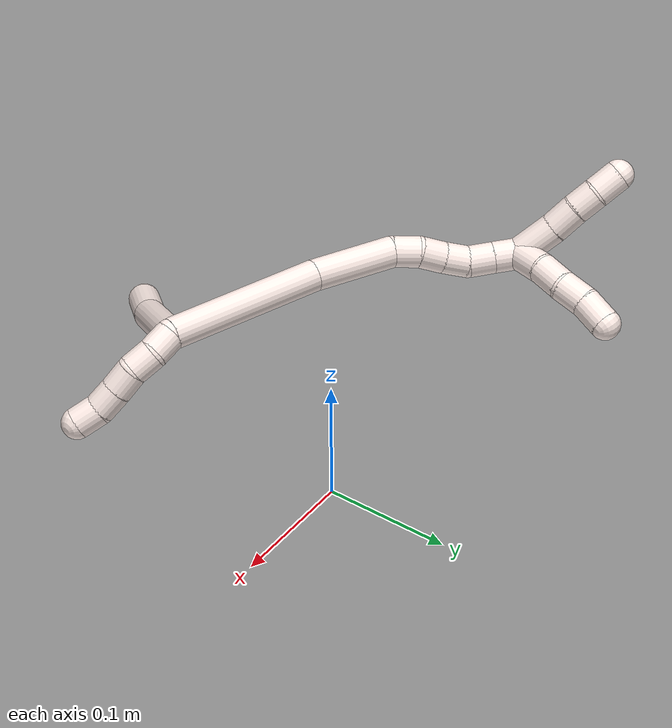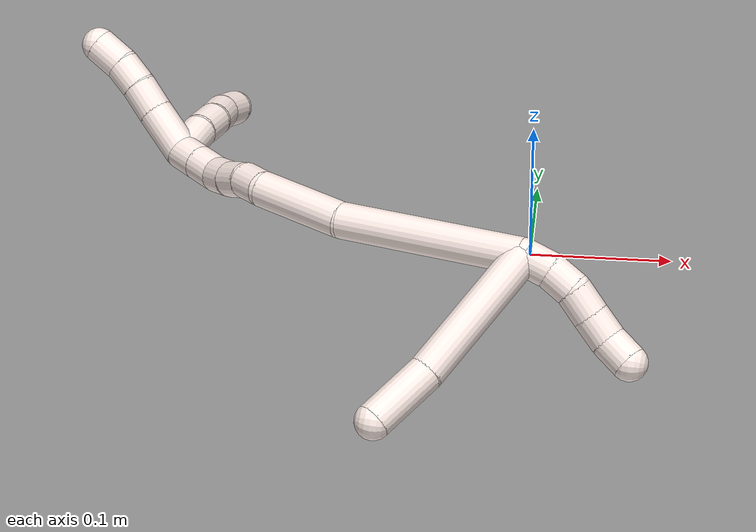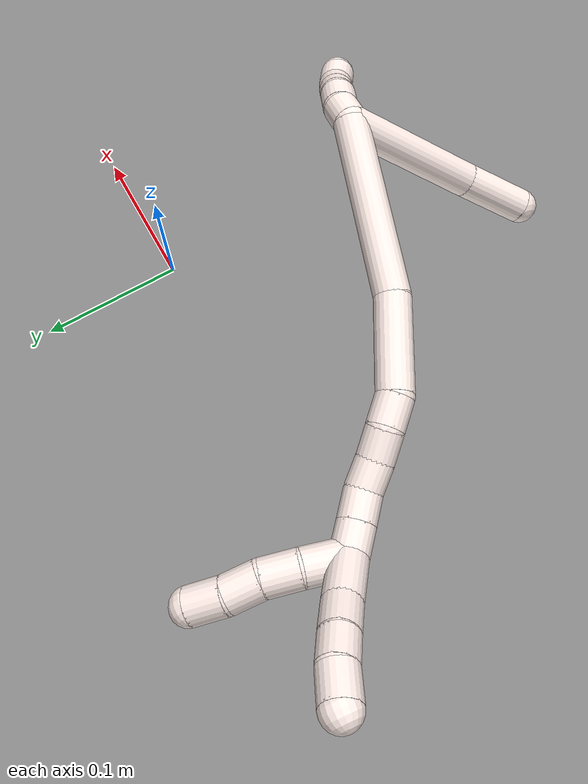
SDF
<sdf version="1.7">
 <world name="default">
  <model name="photoneo_s_sensor">
   <static>1</static>
   <pose>0 0 2 1.57079 1.57079 3.14159</pose>
   <link name="link">
    <inertial><mass>0.1</mass></inertial>
    <sensor name="sensor" type="depth">
     <update_rate>30</update_rate>
     <camera>
      <horizontal_fov>1.22</horizontal_fov>
      <image><width>1920</width><height>1200</height><format>B8G8R8</format></image>
      <clip><near>0.1</near><far>4</far></clip>
      <depth_camera><output>points</output></depth_camera>
     </camera>
     <plugin name="camera_plugin" filename="libgazebo_ros_depth_camera.so">
      <baseline>0.2</baseline>
      <alwaysOn>1</alwaysOn>
      <updateRate>0.0</updateRate>
      <cameraName>camera_ir</cameraName>
      <imageTopicName>/camera/color/image_raw</imageTopicName>
      <cameraInfoTopicName>/camera/color/camera_info</cameraInfoTopicName>
      <depthImageTopicName>/camera/depth/image_raw</depthImageTopicName>
      <depthImageCameraInfoTopicName>/camera/depth/camera_info</depthImageCameraInfoTopicName>
      <pointCloudTopicName>/camera/depth/points</pointCloudTopicName>
      <frameName>fr_optical</frameName>
      <pointCloudCutoff>0.1</pointCloudCutoff>
      <pointCloudCutoffMax>2.0</pointCloudCutoffMax>
      <distortionK1>0</distortionK1>
      <distortionK2>0</distortionK2>
      <distortionK3>0</distortionK3>
      <distortionT1>0</distortionT1>
      <distortionT2>0</distortionT2>
      <CxPrime>0</CxPrime>
      <Cx>0</Cx>
      <Cy>0</Cy>
      <focalLength>0</focalLength>
      <hackBaseline>0</hackBaseline>
     </plugin>
    </sensor>
   </link>
  </model>
  <model name="bin">
   <static>1</static>
   <link name="bottom">
    <collision name="collision-bottom">
     <pose>0 0 -0.01 0 -0 0</pose>
     <geometry><box><size>0.8 0.6 0.02</size></box></geometry>
     <surface>
      <friction><ode><mu>100</mu><mu2>100</mu2></ode></friction>
      <contact><collide_bitmask>65535</collide_bitmask></contact>
     </surface>
    </collision>
   </link>
   <link name="west_wall">
    <collision name="collision-west_wall">
     <pose>-0.41 0 0.1 0 -0 0</pose>
     <geometry><box><size>0.02 0.6 0.2</size></box></geometry>
     <surface>
      <friction><ode><mu>100</mu><mu2>100</mu2></ode></friction>
      <contact><collide_bitmask>65535</collide_bitmask></contact>
     </surface>
    </collision>
   </link>
   <link name="east_wall">
    <collision name="collision-east_wall">
     <pose>0.41 0 0.1 0 -0 0</pose>
     <geometry><box><size>0.02 0.6 0.2</size></box></geometry>
     <surface>
      <friction><ode><mu>100</mu><mu2>100</mu2></ode></friction>
      <contact><collide_bitmask>65535</collide_bitmask></contact>
     </surface>
    </collision>
   </link>
   <link name="south_wall">
    <collision name="collision-south_wall">
     <pose>0 -0.31 0.1 0 -0 0</pose>
     <geometry><box><size>0.8 0.02 0.2</size></box></geometry>
     <surface>
      <friction><ode><mu>100</mu><mu2>100</mu2></ode></friction>
      <contact><collide_bitmask>65535</collide_bitmask></contact>
     </surface>
    </collision>
   </link>
   <link name="north_wall">
    <collision name="collision-north_wall">
     <pose>0 0.31 0.1 0 -0 0</pose>
     <geometry><box><size>0.8 0.02 0.2</size></box></geometry>
     <surface>
      <friction><ode><mu>100</mu><mu2>100</mu2></ode></friction>
      <contact><collide_bitmask>65535</collide_bitmask></contact>
     </surface>
    </collision>
   </link>
  </model>
  <model name="11">
   <static>0</static>
   <link name="11">
    <collision name="collision-cylinder-e_1_2_8">
     <pose>0.036405 -0.027673 0.022724 0.883297 0.793666 0.391198</pose>
     <geometry><cylinder><radius>0.0125</radius><length>0.102127</length></cylinder></geometry>
     <surface>
      <friction><ode><mu>1.16</mu><mu2>1.16</mu2><slip1>0</slip1><slip2>0</slip2></ode></friction>
      <contact><ode><kp>1e+06</kp><kd>1</kd><max_vel>0</max_vel><min_depth>0.001</min_depth></ode></contact>
     </surface>
    </collision>
    <visual name="visual-cylinder-e_1_2_8">
     <pose>0.036405 -0.027673 0.022724 0.883297 0.793666 0.391198</pose>
     <geometry><cylinder><radius>0.0125</radius><length>0.102127</length></cylinder></geometry>
     <material><ambient>1 0.933333 0.909804 1</ambient></material>
    </visual>
    <collision name="collision-cylinder-e_2_8_6">
     <pose>0.08998 -0.065997 0.058282 0.692651 0.799952 0.302791</pose>
     <geometry><cylinder><radius>0.0125</radius><length>0.047873</length></cylinder></geometry>
     <surface>
      <friction><ode><mu>1.16</mu><mu2>1.16</mu2><slip1>0</slip1><slip2>0</slip2></ode></friction>
      <contact><ode><kp>1e+06</kp><kd>1</kd><max_vel>0</max_vel><min_depth>0.001</min_depth></ode></contact>
     </surface>
    </collision>
    <visual name="visual-cylinder-e_2_8_6">
     <pose>0.08998 -0.065997 0.058282 0.692651 0.799952 0.302791</pose>
     <geometry><cylinder><radius>0.0125</radius><length>0.047873</length></cylinder></geometry>
     <material><ambient>1 0.933333 0.909804 1</ambient></material>
    </visual>
    <collision name="collision-cylinder-e_1_2_9">
     <pose>0.000546 -0.003148 -0.009476 2.82083 0.054607 0.334487</pose>
     <geometry><cylinder><radius>0.0125</radius><length>0.02</length></cylinder></geometry>
     <surface>
      <friction><ode><mu>1.16</mu><mu2>1.16</mu2><slip1>0</slip1><slip2>0</slip2></ode></friction>
      <contact><ode><kp>1e+06</kp><kd>1</kd><max_vel>0</max_vel><min_depth>0.001</min_depth></ode></contact>
     </surface>
    </collision>
    <visual name="visual-cylinder-e_1_2_9">
     <pose>0.000546 -0.003148 -0.009476 2.82083 0.054607 0.334487</pose>
     <geometry><cylinder><radius>0.0125</radius><length>0.02</length></cylinder></geometry>
     <material><ambient>1 0.933333 0.909804 1</ambient></material>
    </visual>
    <collision name="collision-cylinder-e_2_9_10">
     <pose>0.003999 -0.010514 -0.02754 2.68509 0.295049 1.13821</pose>
     <geometry><cylinder><radius>0.0125</radius><length>0.02</length></cylinder></geometry>
     <surface>
      <friction><ode><mu>1.16</mu><mu2>1.16</mu2><slip1>0</slip1><slip2>0</slip2></ode></friction>
      <contact><ode><kp>1e+06</kp><kd>1</kd><max_vel>0</max_vel><min_depth>0.001</min_depth></ode></contact>
     </surface>
    </collision>
    <visual name="visual-cylinder-e_2_9_10">
     <pose>0.003999 -0.010514 -0.02754 2.68509 0.295049 1.13821</pose>
     <geometry><cylinder><radius>0.0125</radius><length>0.02</length></cylinder></geometry>
     <material><ambient>1 0.933333 0.909804 1</ambient></material>
    </visual>
    <collision name="collision-cylinder-e_3_10_11">
     <pose>0.009545 -0.021495 -0.043005 2.36453 0.266952 0.633937</pose>
     <geometry><cylinder><radius>0.0125</radius><length>0.02</length></cylinder></geometry>
     <surface>
      <friction><ode><mu>1.16</mu><mu2>1.16</mu2><slip1>0</slip1><slip2>0</slip2></ode></friction>
      <contact><ode><kp>1e+06</kp><kd>1</kd><max_vel>0</max_vel><min_depth>0.001</min_depth></ode></contact>
     </surface>
    </collision>
    <visual name="visual-cylinder-e_3_10_11">
     <pose>0.009545 -0.021495 -0.043005 2.36453 0.266952 0.633937</pose>
     <geometry><cylinder><radius>0.0125</radius><length>0.02</length></cylinder></geometry>
     <material><ambient>1 0.933333 0.909804 1</ambient></material>
    </visual>
    <collision name="collision-cylinder-e_4_11_12">
     <pose>0.015149 -0.034716 -0.056919 2.39913 0.301159 0.743303</pose>
     <geometry><cylinder><radius>0.0125</radius><length>0.02</length></cylinder></geometry>
     <surface>
      <friction><ode><mu>1.16</mu><mu2>1.16</mu2><slip1>0</slip1><slip2>0</slip2></ode></friction>
      <contact><ode><kp>1e+06</kp><kd>1</kd><max_vel>0</max_vel><min_depth>0.001</min_depth></ode></contact>
     </surface>
    </collision>
    <visual name="visual-cylinder-e_4_11_12">
     <pose>0.015149 -0.034716 -0.056919 2.39913 0.301159 0.743303</pose>
     <geometry><cylinder><radius>0.0125</radius><length>0.02</length></cylinder></geometry>
     <material><ambient>1 0.933333 0.909804 1</ambient></material>
    </visual>
    <collision name="collision-cylinder-e_5_12_5">
     <pose>0.022536 -0.045356 -0.07189 2.65639 0.457836 1.51057</pose>
     <geometry><cylinder><radius>0.0125</radius><length>0.02</length></cylinder></geometry>
     <surface>
      <friction><ode><mu>1.16</mu><mu2>1.16</mu2><slip1>0</slip1><slip2>0</slip2></ode></friction>
      <contact><ode><kp>1e+06</kp><kd>1</kd><max_vel>0</max_vel><min_depth>0.001</min_depth></ode></contact>
     </surface>
    </collision>
    <visual name="visual-cylinder-e_5_12_5">
     <pose>0.022536 -0.045356 -0.07189 2.65639 0.457836 1.51057</pose>
     <geometry><cylinder><radius>0.0125</radius><length>0.02</length></cylinder></geometry>
     <material><ambient>1 0.933333 0.909804 1</ambient></material>
    </visual>
    <collision name="collision-cylinder-e_1_2_13">
     <pose>-0.014898 -0.00654 0.063542 0.102565 -0.229132 -0.011812</pose>
     <geometry><cylinder><radius>0.0125</radius><length>0.131183</length></cylinder></geometry>
     <surface>
      <friction><ode><mu>1.16</mu><mu2>1.16</mu2><slip1>0</slip1><slip2>0</slip2></ode></friction>
      <contact><ode><kp>1e+06</kp><kd>1</kd><max_vel>0</max_vel><min_depth>0.001</min_depth></ode></contact>
     </surface>
    </collision>
    <visual name="visual-cylinder-e_1_2_13">
     <pose>-0.014898 -0.00654 0.063542 0.102565 -0.229132 -0.011812</pose>
     <geometry><cylinder><radius>0.0125</radius><length>0.131183</length></cylinder></geometry>
     <material><ambient>1 0.933333 0.909804 1</ambient></material>
    </visual>
    <collision name="collision-cylinder-e_2_13_14">
     <pose>-0.04372 -0.014003 0.157365 0.030448 -0.430823 -0.006663</pose>
     <geometry><cylinder><radius>0.0125</radius><length>0.066686</length></cylinder></geometry>
     <surface>
      <friction><ode><mu>1.16</mu><mu2>1.16</mu2><slip1>0</slip1><slip2>0</slip2></ode></friction>
      <contact><ode><kp>1e+06</kp><kd>1</kd><max_vel>0</max_vel><min_depth>0.001</min_depth></ode></contact>
     </surface>
    </collision>
    <visual name="visual-cylinder-e_2_13_14">
     <pose>-0.04372 -0.014003 0.157365 0.030448 -0.430823 -0.006663</pose>
     <geometry><cylinder><radius>0.0125</radius><length>0.066686</length></cylinder></geometry>
     <material><ambient>1 0.933333 0.909804 1</ambient></material>
    </visual>
    <collision name="collision-cylinder-e_3_14_15">
     <pose>-0.064789 -0.016561 0.195425 0.207313 -0.732148 -0.079718</pose>
     <geometry><cylinder><radius>0.0125</radius><length>0.021373</length></cylinder></geometry>
     <surface>
      <friction><ode><mu>1.16</mu><mu2>1.16</mu2><slip1>0</slip1><slip2>0</slip2></ode></friction>
      <contact><ode><kp>1e+06</kp><kd>1</kd><max_vel>0</max_vel><min_depth>0.001</min_depth></ode></contact>
     </surface>
    </collision>
    <visual name="visual-cylinder-e_3_14_15">
     <pose>-0.064789 -0.016561 0.195425 0.207313 -0.732148 -0.079718</pose>
     <geometry><cylinder><radius>0.0125</radius><length>0.021373</length></cylinder></geometry>
     <material><ambient>1 0.933333 0.909804 1</ambient></material>
    </visual>
    <collision name="collision-cylinder-e_4_15_16">
     <pose>-0.078281 -0.022263 0.209882 0.546828 -0.681968 -0.19837</pose>
     <geometry><cylinder><radius>0.0125</radius><length>0.020144</length></cylinder></geometry>
     <surface>
      <friction><ode><mu>1.16</mu><mu2>1.16</mu2><slip1>0</slip1><slip2>0</slip2></ode></friction>
      <contact><ode><kp>1e+06</kp><kd>1</kd><max_vel>0</max_vel><min_depth>0.001</min_depth></ode></contact>
     </surface>
    </collision>
    <visual name="visual-cylinder-e_4_15_16">
     <pose>-0.078281 -0.022263 0.209882 0.546828 -0.681968 -0.19837</pose>
     <geometry><cylinder><radius>0.0125</radius><length>0.020144</length></cylinder></geometry>
     <material><ambient>1 0.933333 0.909804 1</ambient></material>
    </visual>
    <collision name="collision-cylinder-e_5_16_17">
     <pose>-0.091648 -0.029231 0.223108 0.417266 -0.775301 -0.172461</pose>
     <geometry><cylinder><radius>0.0125</radius><length>0.020056</length></cylinder></geometry>
     <surface>
      <friction><ode><mu>1.16</mu><mu2>1.16</mu2><slip1>0</slip1><slip2>0</slip2></ode></friction>
      <contact><ode><kp>1e+06</kp><kd>1</kd><max_vel>0</max_vel><min_depth>0.001</min_depth></ode></contact>
     </surface>
    </collision>
    <visual name="visual-cylinder-e_5_16_17">
     <pose>-0.091648 -0.029231 0.223108 0.417266 -0.775301 -0.172461</pose>
     <geometry><cylinder><radius>0.0125</radius><length>0.020056</length></cylinder></geometry>
     <material><ambient>1 0.933333 0.909804 1</ambient></material>
    </visual>
    <collision name="collision-cylinder-e_6_17_18">
     <pose>-0.104787 -0.032089 0.237723 -0.005466 -0.649001 0.001839</pose>
     <geometry><cylinder><radius>0.0125</radius><length>0.020251</length></cylinder></geometry>
     <surface>
      <friction><ode><mu>1.16</mu><mu2>1.16</mu2><slip1>0</slip1><slip2>0</slip2></ode></friction>
      <contact><ode><kp>1e+06</kp><kd>1</kd><max_vel>0</max_vel><min_depth>0.001</min_depth></ode></contact>
     </surface>
    </collision>
    <visual name="visual-cylinder-e_6_17_18">
     <pose>-0.104787 -0.032089 0.237723 -0.005466 -0.649001 0.001839</pose>
     <geometry><cylinder><radius>0.0125</radius><length>0.020251</length></cylinder></geometry>
     <material><ambient>1 0.933333 0.909804 1</ambient></material>
    </visual>
    <collision name="collision-cylinder-e_7_18_1">
     <pose>-0.117135 -0.03202 0.253808 -0.00316 -0.660359 0.001083</pose>
     <geometry><cylinder><radius>0.0125</radius><length>0.020307</length></cylinder></geometry>
     <surface>
      <friction><ode><mu>1.16</mu><mu2>1.16</mu2><slip1>0</slip1><slip2>0</slip2></ode></friction>
      <contact><ode><kp>1e+06</kp><kd>1</kd><max_vel>0</max_vel><min_depth>0.001</min_depth></ode></contact>
     </surface>
    </collision>
    <visual name="visual-cylinder-e_7_18_1">
     <pose>-0.117135 -0.03202 0.253808 -0.00316 -0.660359 0.001083</pose>
     <geometry><cylinder><radius>0.0125</radius><length>0.020307</length></cylinder></geometry>
     <material><ambient>1 0.933333 0.909804 1</ambient></material>
    </visual>
    <collision name="collision-cylinder-e_1_1_19">
     <pose>-0.137494 -0.030304 0.259368 -2.53942 -1.36268 2.41014</pose>
     <geometry><cylinder><radius>0.0125</radius><length>0.028885</length></cylinder></geometry>
     <surface>
      <friction><ode><mu>1.16</mu><mu2>1.16</mu2><slip1>0</slip1><slip2>0</slip2></ode></friction>
      <contact><ode><kp>1e+06</kp><kd>1</kd><max_vel>0</max_vel><min_depth>0.001</min_depth></ode></contact>
     </surface>
    </collision>
    <visual name="visual-cylinder-e_1_1_19">
     <pose>-0.137494 -0.030304 0.259368 -2.53942 -1.36268 2.41014</pose>
     <geometry><cylinder><radius>0.0125</radius><length>0.028885</length></cylinder></geometry>
     <material><ambient>1 0.933333 0.909804 1</ambient></material>
    </visual>
    <collision name="collision-cylinder-e_2_19_20">
     <pose>-0.16349 -0.029387 0.254797 2.79071 -1.38349 -2.71992</pose>
     <geometry><cylinder><radius>0.0125</radius><length>0.024153</length></cylinder></geometry>
     <surface>
      <friction><ode><mu>1.16</mu><mu2>1.16</mu2><slip1>0</slip1><slip2>0</slip2></ode></friction>
      <contact><ode><kp>1e+06</kp><kd>1</kd><max_vel>0</max_vel><min_depth>0.001</min_depth></ode></contact>
     </surface>
    </collision>
    <visual name="visual-cylinder-e_2_19_20">
     <pose>-0.16349 -0.029387 0.254797 2.79071 -1.38349 -2.71992</pose>
     <geometry><cylinder><radius>0.0125</radius><length>0.024153</length></cylinder></geometry>
     <material><ambient>1 0.933333 0.909804 1</ambient></material>
    </visual>
    <collision name="collision-cylinder-e_3_20_21">
     <pose>-0.186639 -0.032286 0.252498 1.65875 -1.38388 -1.47101</pose>
     <geometry><cylinder><radius>0.0125</radius><length>0.022968</length></cylinder></geometry>
     <surface>
      <friction><ode><mu>1.16</mu><mu2>1.16</mu2><slip1>0</slip1><slip2>0</slip2></ode></friction>
      <contact><ode><kp>1e+06</kp><kd>1</kd><max_vel>0</max_vel><min_depth>0.001</min_depth></ode></contact>
     </surface>
    </collision>
    <visual name="visual-cylinder-e_3_20_21">
     <pose>-0.186639 -0.032286 0.252498 1.65875 -1.38388 -1.47101</pose>
     <geometry><cylinder><radius>0.0125</radius><length>0.022968</length></cylinder></geometry>
     <material><ambient>1 0.933333 0.909804 1</ambient></material>
    </visual>
    <collision name="collision-cylinder-e_4_21_4">
     <pose>-0.20925 -0.037759 0.250208 2.1318 -1.23501 -1.81891</pose>
     <geometry><cylinder><radius>0.0125</radius><length>0.023995</length></cylinder></geometry>
     <surface>
      <friction><ode><mu>1.16</mu><mu2>1.16</mu2><slip1>0</slip1><slip2>0</slip2></ode></friction>
      <contact><ode><kp>1e+06</kp><kd>1</kd><max_vel>0</max_vel><min_depth>0.001</min_depth></ode></contact>
     </surface>
    </collision>
    <visual name="visual-cylinder-e_4_21_4">
     <pose>-0.20925 -0.037759 0.250208 2.1318 -1.23501 -1.81891</pose>
     <geometry><cylinder><radius>0.0125</radius><length>0.023995</length></cylinder></geometry>
     <material><ambient>1 0.933333 0.909804 1</ambient></material>
    </visual>
    <collision name="collision-cylinder-e_1_1_22">
     <pose>-0.131332 -0.022625 0.274177 -0.649058 -0.474804 0.162447</pose>
     <geometry><cylinder><radius>0.0125</radius><length>0.03486</length></cylinder></geometry>
     <surface>
      <friction><ode><mu>1.16</mu><mu2>1.16</mu2><slip1>0</slip1><slip2>0</slip2></ode></friction>
      <contact><ode><kp>1e+06</kp><kd>1</kd><max_vel>0</max_vel><min_depth>0.001</min_depth></ode></contact>
     </surface>
    </collision>
    <visual name="visual-cylinder-e_1_1_22">
     <pose>-0.131332 -0.022625 0.274177 -0.649058 -0.474804 0.162447</pose>
     <geometry><cylinder><radius>0.0125</radius><length>0.03486</length></cylinder></geometry>
     <material><ambient>1 0.933333 0.909804 1</ambient></material>
    </visual>
    <collision name="collision-cylinder-e_2_22_23">
     <pose>-0.14381 -0.006369 0.294284 -0.725937 -0.410186 0.157681</pose>
     <geometry><cylinder><radius>0.0125</radius><length>0.022622</length></cylinder></geometry>
     <surface>
      <friction><ode><mu>1.16</mu><mu2>1.16</mu2><slip1>0</slip1><slip2>0</slip2></ode></friction>
      <contact><ode><kp>1e+06</kp><kd>1</kd><max_vel>0</max_vel><min_depth>0.001</min_depth></ode></contact>
     </surface>
    </collision>
    <visual name="visual-cylinder-e_2_22_23">
     <pose>-0.14381 -0.006369 0.294284 -0.725937 -0.410186 0.157681</pose>
     <geometry><cylinder><radius>0.0125</radius><length>0.022622</length></cylinder></geometry>
     <material><ambient>1 0.933333 0.909804 1</ambient></material>
    </visual>
    <collision name="collision-cylinder-e_3_23_24">
     <pose>-0.15241 0.005829 0.309597 -0.612812 -0.416726 0.133582</pose>
     <geometry><cylinder><radius>0.0125</radius><length>0.020202</length></cylinder></geometry>
     <surface>
      <friction><ode><mu>1.16</mu><mu2>1.16</mu2><slip1>0</slip1><slip2>0</slip2></ode></friction>
      <contact><ode><kp>1e+06</kp><kd>1</kd><max_vel>0</max_vel><min_depth>0.001</min_depth></ode></contact>
     </surface>
    </collision>
    <visual name="visual-cylinder-e_3_23_24">
     <pose>-0.15241 0.005829 0.309597 -0.612812 -0.416726 0.133582</pose>
     <geometry><cylinder><radius>0.0125</radius><length>0.020202</length></cylinder></geometry>
     <material><ambient>1 0.933333 0.909804 1</ambient></material>
    </visual>
    <collision name="collision-cylinder-e_4_24_3">
     <pose>-0.159974 0.015673 0.326739 -0.441506 -0.316813 0.071666</pose>
     <geometry><cylinder><radius>0.0125</radius><length>0.022316</length></cylinder></geometry>
     <surface>
      <friction><ode><mu>1.16</mu><mu2>1.16</mu2><slip1>0</slip1><slip2>0</slip2></ode></friction>
      <contact><ode><kp>1e+06</kp><kd>1</kd><max_vel>0</max_vel><min_depth>0.001</min_depth></ode></contact>
     </surface>
    </collision>
    <visual name="visual-cylinder-e_4_24_3">
     <pose>-0.159974 0.015673 0.326739 -0.441506 -0.316813 0.071666</pose>
     <geometry><cylinder><radius>0.0125</radius><length>0.022316</length></cylinder></geometry>
     <material><ambient>1 0.933333 0.909804 1</ambient></material>
    </visual>
    <collision name="collision-sphere-3">
     <pose>-0.163451 0.020203 0.336326 0 -0 0</pose>
     <geometry><sphere><radius>0.0125</radius></sphere></geometry>
     <surface>
      <friction><ode><mu>1.16</mu><mu2>1.16</mu2><slip1>0</slip1><slip2>0</slip2></ode></friction>
      <contact><ode><kp>1e+06</kp><kd>1</kd><max_vel>0</max_vel><min_depth>0.001</min_depth></ode></contact>
     </surface>
    </collision>
    <visual name="visual-sphere-3">
     <pose>-0.163451 0.020203 0.336326 0 -0 0</pose>
     <geometry><sphere><radius>0.0125</radius></sphere></geometry>
     <material><ambient>1 0.933333 0.909804 1</ambient></material>
    </visual>
    <collision name="collision-sphere-24">
     <pose>-0.156498 0.011142 0.317153 0 -0 0</pose>
     <geometry><sphere><radius>0.0125</radius></sphere></geometry>
     <surface>
      <friction><ode><mu>1.16</mu><mu2>1.16</mu2><slip1>0</slip1><slip2>0</slip2></ode></friction>
      <contact><ode><kp>1e+06</kp><kd>1</kd><max_vel>0</max_vel><min_depth>0.001</min_depth></ode></contact>
     </surface>
    </collision>
    <visual name="visual-sphere-24">
     <pose>-0.156498 0.011142 0.317153 0 -0 0</pose>
     <geometry><sphere><radius>0.0125</radius></sphere></geometry>
     <material><ambient>1 0.933333 0.909804 1</ambient></material>
    </visual>
    <collision name="collision-sphere-23">
     <pose>-0.148321 0.000517 0.302042 0 -0 0</pose>
     <geometry><sphere><radius>0.0125</radius></sphere></geometry>
     <surface>
      <friction><ode><mu>1.16</mu><mu2>1.16</mu2><slip1>0</slip1><slip2>0</slip2></ode></friction>
      <contact><ode><kp>1e+06</kp><kd>1</kd><max_vel>0</max_vel><min_depth>0.001</min_depth></ode></contact>
     </surface>
    </collision>
    <visual name="visual-sphere-23">
     <pose>-0.148321 0.000517 0.302042 0 -0 0</pose>
     <geometry><sphere><radius>0.0125</radius></sphere></geometry>
     <material><ambient>1 0.933333 0.909804 1</ambient></material>
    </visual>
    <collision name="collision-sphere-22">
     <pose>-0.1393 -0.013255 0.286527 0 -0 0</pose>
     <geometry><sphere><radius>0.0125</radius></sphere></geometry>
     <surface>
      <friction><ode><mu>1.16</mu><mu2>1.16</mu2><slip1>0</slip1><slip2>0</slip2></ode></friction>
      <contact><ode><kp>1e+06</kp><kd>1</kd><max_vel>0</max_vel><min_depth>0.001</min_depth></ode></contact>
     </surface>
    </collision>
    <visual name="visual-sphere-22">
     <pose>-0.1393 -0.013255 0.286527 0 -0 0</pose>
     <geometry><sphere><radius>0.0125</radius></sphere></geometry>
     <material><ambient>1 0.933333 0.909804 1</ambient></material>
    </visual>
    <collision name="collision-sphere-4">
     <pose>-0.220577 -0.041106 0.248104 0 -0 0</pose>
     <geometry><sphere><radius>0.0125</radius></sphere></geometry>
     <surface>
      <friction><ode><mu>1.16</mu><mu2>1.16</mu2><slip1>0</slip1><slip2>0</slip2></ode></friction>
      <contact><ode><kp>1e+06</kp><kd>1</kd><max_vel>0</max_vel><min_depth>0.001</min_depth></ode></contact>
     </surface>
    </collision>
    <visual name="visual-sphere-4">
     <pose>-0.220577 -0.041106 0.248104 0 -0 0</pose>
     <geometry><sphere><radius>0.0125</radius></sphere></geometry>
     <material><ambient>1 0.933333 0.909804 1</ambient></material>
    </visual>
    <collision name="collision-sphere-21">
     <pose>-0.197923 -0.034412 0.252311 0 -0 0</pose>
     <geometry><sphere><radius>0.0125</radius></sphere></geometry>
     <surface>
      <friction><ode><mu>1.16</mu><mu2>1.16</mu2><slip1>0</slip1><slip2>0</slip2></ode></friction>
      <contact><ode><kp>1e+06</kp><kd>1</kd><max_vel>0</max_vel><min_depth>0.001</min_depth></ode></contact>
     </surface>
    </collision>
    <visual name="visual-sphere-21">
     <pose>-0.197923 -0.034412 0.252311 0 -0 0</pose>
     <geometry><sphere><radius>0.0125</radius></sphere></geometry>
     <material><ambient>1 0.933333 0.909804 1</ambient></material>
    </visual>
    <collision name="collision-sphere-20">
     <pose>-0.175355 -0.03016 0.252686 0 -0 0</pose>
     <geometry><sphere><radius>0.0125</radius></sphere></geometry>
     <surface>
      <friction><ode><mu>1.16</mu><mu2>1.16</mu2><slip1>0</slip1><slip2>0</slip2></ode></friction>
      <contact><ode><kp>1e+06</kp><kd>1</kd><max_vel>0</max_vel><min_depth>0.001</min_depth></ode></contact>
     </surface>
    </collision>
    <visual name="visual-sphere-20">
     <pose>-0.175355 -0.03016 0.252686 0 -0 0</pose>
     <geometry><sphere><radius>0.0125</radius></sphere></geometry>
     <material><ambient>1 0.933333 0.909804 1</ambient></material>
    </visual>
    <collision name="collision-sphere-11">
     <pose>0.012183 -0.028259 -0.049882 0 -0 0</pose>
     <geometry><sphere><radius>0.0125</radius></sphere></geometry>
     <surface>
      <friction><ode><mu>1.16</mu><mu2>1.16</mu2><slip1>0</slip1><slip2>0</slip2></ode></friction>
      <contact><ode><kp>1e+06</kp><kd>1</kd><max_vel>0</max_vel><min_depth>0.001</min_depth></ode></contact>
     </surface>
    </collision>
    <visual name="visual-sphere-11">
     <pose>0.012183 -0.028259 -0.049882 0 -0 0</pose>
     <geometry><sphere><radius>0.0125</radius></sphere></geometry>
     <material><ambient>1 0.933333 0.909804 1</ambient></material>
    </visual>
    <collision name="collision-sphere-10">
     <pose>0.006907 -0.014732 -0.036128 0 -0 0</pose>
     <geometry><sphere><radius>0.0125</radius></sphere></geometry>
     <surface>
      <friction><ode><mu>1.16</mu><mu2>1.16</mu2><slip1>0</slip1><slip2>0</slip2></ode></friction>
      <contact><ode><kp>1e+06</kp><kd>1</kd><max_vel>0</max_vel><min_depth>0.001</min_depth></ode></contact>
     </surface>
    </collision>
    <visual name="visual-sphere-10">
     <pose>0.006907 -0.014732 -0.036128 0 -0 0</pose>
     <geometry><sphere><radius>0.0125</radius></sphere></geometry>
     <material><ambient>1 0.933333 0.909804 1</ambient></material>
    </visual>
    <collision name="collision-sphere-6">
     <pose>0.10715 -0.076647 0.071116 0 -0 0</pose>
     <geometry><sphere><radius>0.0125</radius></sphere></geometry>
     <surface>
      <friction><ode><mu>1.16</mu><mu2>1.16</mu2><slip1>0</slip1><slip2>0</slip2></ode></friction>
      <contact><ode><kp>1e+06</kp><kd>1</kd><max_vel>0</max_vel><min_depth>0.001</min_depth></ode></contact>
     </surface>
    </collision>
    <visual name="visual-sphere-6">
     <pose>0.10715 -0.076647 0.071116 0 -0 0</pose>
     <geometry><sphere><radius>0.0125</radius></sphere></geometry>
     <material><ambient>1 0.933333 0.909804 1</ambient></material>
    </visual>
    <collision name="collision-sphere-9">
     <pose>0.001092 -0.006296 -0.018952 0 -0 0</pose>
     <geometry><sphere><radius>0.0125</radius></sphere></geometry>
     <surface>
      <friction><ode><mu>1.16</mu><mu2>1.16</mu2><slip1>0</slip1><slip2>0</slip2></ode></friction>
      <contact><ode><kp>1e+06</kp><kd>1</kd><max_vel>0</max_vel><min_depth>0.001</min_depth></ode></contact>
     </surface>
    </collision>
    <visual name="visual-sphere-9">
     <pose>0.001092 -0.006296 -0.018952 0 -0 0</pose>
     <geometry><sphere><radius>0.0125</radius></sphere></geometry>
     <material><ambient>1 0.933333 0.909804 1</ambient></material>
    </visual>
    <collision name="collision-sphere-2">
     <geometry><sphere><radius>0.0125</radius></sphere></geometry>
     <surface>
      <friction><ode><mu>1.16</mu><mu2>1.16</mu2><slip1>0</slip1><slip2>0</slip2></ode></friction>
      <contact><ode><kp>1e+06</kp><kd>1</kd><max_vel>0</max_vel><min_depth>0.001</min_depth></ode></contact>
     </surface>
    </collision>
    <visual name="visual-sphere-2">
     <geometry><sphere><radius>0.0125</radius></sphere></geometry>
     <material><ambient>1 0.933333 0.909804 1</ambient></material>
    </visual>
    <collision name="collision-sphere-19">
     <pose>-0.151625 -0.028614 0.256909 0 -0 0</pose>
     <geometry><sphere><radius>0.0125</radius></sphere></geometry>
     <surface>
      <friction><ode><mu>1.16</mu><mu2>1.16</mu2><slip1>0</slip1><slip2>0</slip2></ode></friction>
      <contact><ode><kp>1e+06</kp><kd>1</kd><max_vel>0</max_vel><min_depth>0.001</min_depth></ode></contact>
     </surface>
    </collision>
    <visual name="visual-sphere-19">
     <pose>-0.151625 -0.028614 0.256909 0 -0 0</pose>
     <geometry><sphere><radius>0.0125</radius></sphere></geometry>
     <material><ambient>1 0.933333 0.909804 1</ambient></material>
    </visual>
    <collision name="collision-sphere-8">
     <pose>0.07281 -0.055347 0.045448 0 -0 0</pose>
     <geometry><sphere><radius>0.0125</radius></sphere></geometry>
     <surface>
      <friction><ode><mu>1.16</mu><mu2>1.16</mu2><slip1>0</slip1><slip2>0</slip2></ode></friction>
      <contact><ode><kp>1e+06</kp><kd>1</kd><max_vel>0</max_vel><min_depth>0.001</min_depth></ode></contact>
     </surface>
    </collision>
    <visual name="visual-sphere-8">
     <pose>0.07281 -0.055347 0.045448 0 -0 0</pose>
     <geometry><sphere><radius>0.0125</radius></sphere></geometry>
     <material><ambient>1 0.933333 0.909804 1</ambient></material>
    </visual>
    <collision name="collision-sphere-12">
     <pose>0.018116 -0.041172 -0.063955 0 -0 0</pose>
     <geometry><sphere><radius>0.0125</radius></sphere></geometry>
     <surface>
      <friction><ode><mu>1.16</mu><mu2>1.16</mu2><slip1>0</slip1><slip2>0</slip2></ode></friction>
      <contact><ode><kp>1e+06</kp><kd>1</kd><max_vel>0</max_vel><min_depth>0.001</min_depth></ode></contact>
     </surface>
    </collision>
    <visual name="visual-sphere-12">
     <pose>0.018116 -0.041172 -0.063955 0 -0 0</pose>
     <geometry><sphere><radius>0.0125</radius></sphere></geometry>
     <material><ambient>1 0.933333 0.909804 1</ambient></material>
    </visual>
    <collision name="collision-sphere-5">
     <pose>0.026956 -0.049539 -0.079825 0 -0 0</pose>
     <geometry><sphere><radius>0.0125</radius></sphere></geometry>
     <surface>
      <friction><ode><mu>1.16</mu><mu2>1.16</mu2><slip1>0</slip1><slip2>0</slip2></ode></friction>
      <contact><ode><kp>1e+06</kp><kd>1</kd><max_vel>0</max_vel><min_depth>0.001</min_depth></ode></contact>
     </surface>
    </collision>
    <visual name="visual-sphere-5">
     <pose>0.026956 -0.049539 -0.079825 0 -0 0</pose>
     <geometry><sphere><radius>0.0125</radius></sphere></geometry>
     <material><ambient>1 0.933333 0.909804 1</ambient></material>
    </visual>
    <collision name="collision-sphere-13">
     <pose>-0.029796 -0.01308 0.127083 0 -0 0</pose>
     <geometry><sphere><radius>0.0125</radius></sphere></geometry>
     <surface>
      <friction><ode><mu>1.16</mu><mu2>1.16</mu2><slip1>0</slip1><slip2>0</slip2></ode></friction>
      <contact><ode><kp>1e+06</kp><kd>1</kd><max_vel>0</max_vel><min_depth>0.001</min_depth></ode></contact>
     </surface>
    </collision>
    <visual name="visual-sphere-13">
     <pose>-0.029796 -0.01308 0.127083 0 -0 0</pose>
     <geometry><sphere><radius>0.0125</radius></sphere></geometry>
     <material><ambient>1 0.933333 0.909804 1</ambient></material>
    </visual>
    <collision name="collision-sphere-14">
     <pose>-0.057645 -0.014925 0.187647 0 -0 0</pose>
     <geometry><sphere><radius>0.0125</radius></sphere></geometry>
     <surface>
      <friction><ode><mu>1.16</mu><mu2>1.16</mu2><slip1>0</slip1><slip2>0</slip2></ode></friction>
      <contact><ode><kp>1e+06</kp><kd>1</kd><max_vel>0</max_vel><min_depth>0.001</min_depth></ode></contact>
     </surface>
    </collision>
    <visual name="visual-sphere-14">
     <pose>-0.057645 -0.014925 0.187647 0 -0 0</pose>
     <geometry><sphere><radius>0.0125</radius></sphere></geometry>
     <material><ambient>1 0.933333 0.909804 1</ambient></material>
    </visual>
    <collision name="collision-sphere-15">
     <pose>-0.071932 -0.018197 0.203203 0 -0 0</pose>
     <geometry><sphere><radius>0.0125</radius></sphere></geometry>
     <surface>
      <friction><ode><mu>1.16</mu><mu2>1.16</mu2><slip1>0</slip1><slip2>0</slip2></ode></friction>
      <contact><ode><kp>1e+06</kp><kd>1</kd><max_vel>0</max_vel><min_depth>0.001</min_depth></ode></contact>
     </surface>
    </collision>
    <visual name="visual-sphere-15">
     <pose>-0.071932 -0.018197 0.203203 0 -0 0</pose>
     <geometry><sphere><radius>0.0125</radius></sphere></geometry>
     <material><ambient>1 0.933333 0.909804 1</ambient></material>
    </visual>
    <collision name="collision-sphere-16">
     <pose>-0.084629 -0.026328 0.216561 0 -0 0</pose>
     <geometry><sphere><radius>0.0125</radius></sphere></geometry>
     <surface>
      <friction><ode><mu>1.16</mu><mu2>1.16</mu2><slip1>0</slip1><slip2>0</slip2></ode></friction>
      <contact><ode><kp>1e+06</kp><kd>1</kd><max_vel>0</max_vel><min_depth>0.001</min_depth></ode></contact>
     </surface>
    </collision>
    <visual name="visual-sphere-16">
     <pose>-0.084629 -0.026328 0.216561 0 -0 0</pose>
     <geometry><sphere><radius>0.0125</radius></sphere></geometry>
     <material><ambient>1 0.933333 0.909804 1</ambient></material>
    </visual>
    <collision name="collision-sphere-17">
     <pose>-0.098667 -0.032133 0.229656 0 -0 0</pose>
     <geometry><sphere><radius>0.0125</radius></sphere></geometry>
     <surface>
      <friction><ode><mu>1.16</mu><mu2>1.16</mu2><slip1>0</slip1><slip2>0</slip2></ode></friction>
      <contact><ode><kp>1e+06</kp><kd>1</kd><max_vel>0</max_vel><min_depth>0.001</min_depth></ode></contact>
     </surface>
    </collision>
    <visual name="visual-sphere-17">
     <pose>-0.098667 -0.032133 0.229656 0 -0 0</pose>
     <geometry><sphere><radius>0.0125</radius></sphere></geometry>
     <material><ambient>1 0.933333 0.909804 1</ambient></material>
    </visual>
    <collision name="collision-sphere-18">
     <pose>-0.110907 -0.032045 0.245789 0 -0 0</pose>
     <geometry><sphere><radius>0.0125</radius></sphere></geometry>
     <surface>
      <friction><ode><mu>1.16</mu><mu2>1.16</mu2><slip1>0</slip1><slip2>0</slip2></ode></friction>
      <contact><ode><kp>1e+06</kp><kd>1</kd><max_vel>0</max_vel><min_depth>0.001</min_depth></ode></contact>
     </surface>
    </collision>
    <visual name="visual-sphere-18">
     <pose>-0.110907 -0.032045 0.245789 0 -0 0</pose>
     <geometry><sphere><radius>0.0125</radius></sphere></geometry>
     <material><ambient>1 0.933333 0.909804 1</ambient></material>
    </visual>
    <collision name="collision-sphere-1">
     <pose>-0.123363 -0.031995 0.261827 0 -0 0</pose>
     <geometry><sphere><radius>0.0125</radius></sphere></geometry>
     <surface>
      <friction><ode><mu>1.16</mu><mu2>1.16</mu2><slip1>0</slip1><slip2>0</slip2></ode></friction>
      <contact><ode><kp>1e+06</kp><kd>1</kd><max_vel>0</max_vel><min_depth>0.001</min_depth></ode></contact>
     </surface>
    </collision>
    <visual name="visual-sphere-1">
     <pose>-0.123363 -0.031995 0.261827 0 -0 0</pose>
     <geometry><sphere><radius>0.0125</radius></sphere></geometry>
     <material><ambient>1 0.933333 0.909804 1</ambient></material>
    </visual>
    <inertial>
     <pose>-0.04909 -0.021958 0.130429 0 -0 0</pose>
     <mass>0.75</mass>
     <inertia>
      <ixx>0.000318</ixx>
      <ixy>0</ixy>
      <ixz>0</ixz>
      <iyy>0.000346</iyy>
      <iyz>0</iyz>
      <izz>9.7e-05</izz>
     </inertia>
    </inertial>
   </link>
   <pose>0.000826 -0.148625 0.082112 1.49093 -0.011301 -1.6774</pose>
  </model>
 </world>
</sdf>
